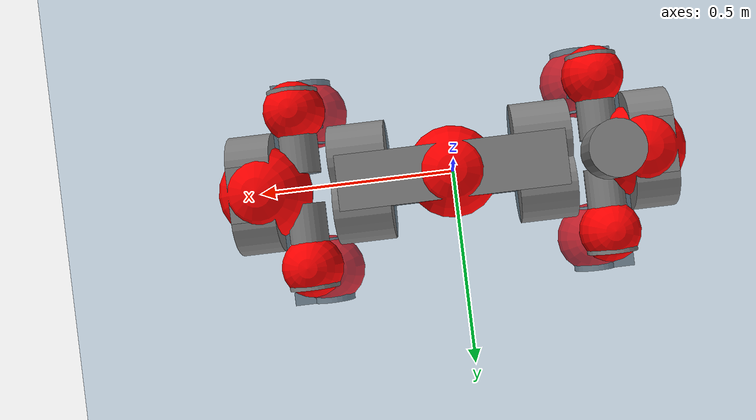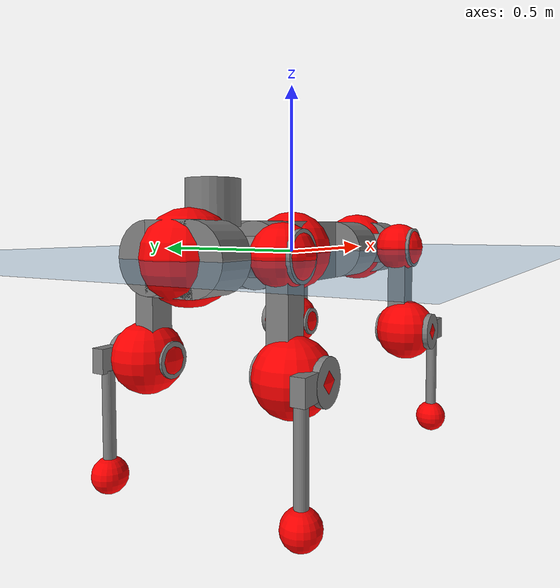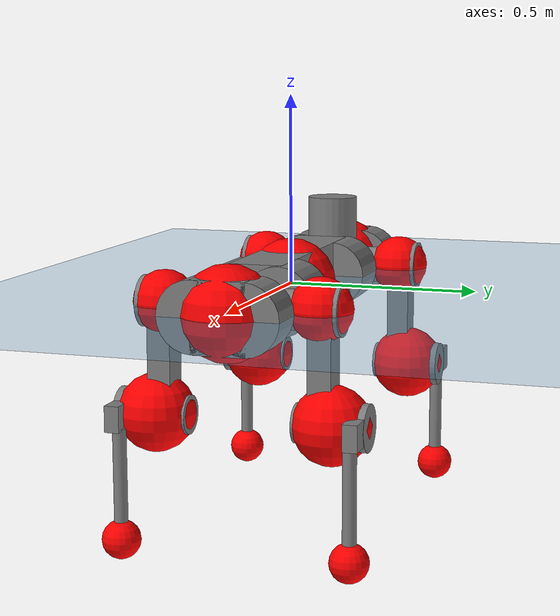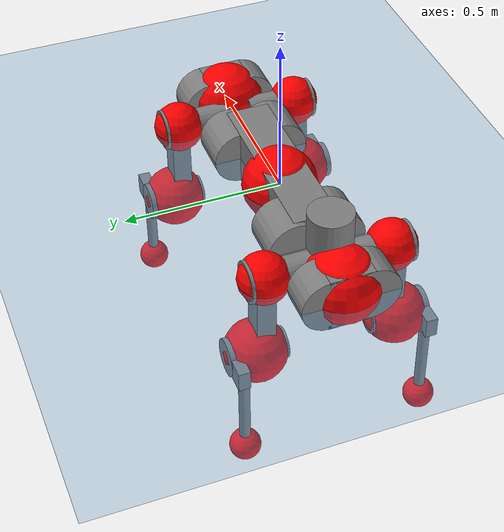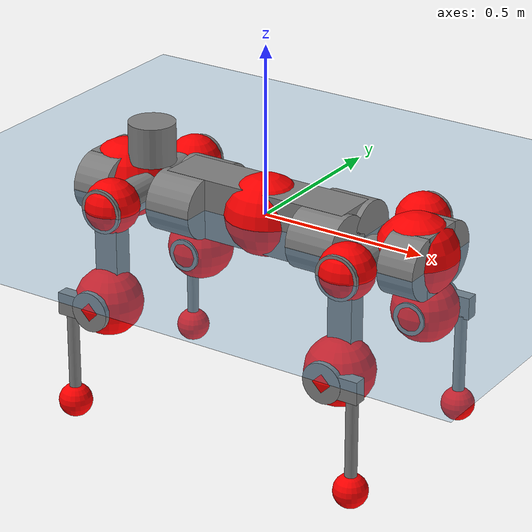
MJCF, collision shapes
<mujoco model="anymal_c">
  <compiler angle="radian" assetdir="assets" balanceinertia="true" inertiafromgeom="false"/>

  <option timestep="0.005" density="1.2" viscosity="2e-05"/>

  <size nkey="1"/>

  <visual>
    <quality shadowsize="8192"/>
    <map shadowclip="0.5"/>
  </visual>

  <default>
    <default class="/">
      <material specular="0" shininess="0.25"/>
      <geom contype="0" conaffinity="0" group="1" solref="-1000 -80"/>
      <site size="0.01 0.005 0.005" group="5"/>
      <general forcelimited="true" forcerange="-80 80" biastype="affine" gainprm="80" biasprm="0 -80 -2"/>
      <default class="anymal_c">
        <joint armature="0.01" damping="0.01" frictionloss="0.1"/>
        <default class="visual">
          <geom type="mesh" group="2"/>
          <default class="visual_zflip"/>
        </default>
        <default class="collision">
          <geom type="cylinder" group="3"/>
          <default class="foot">
            <geom size="0.03 0 0" type="sphere" condim="6" priority="1" friction="0.8 0.02 0.01" solimp="0.015 1 0.03"/>
          </default>
        </default>
      </default>
      <default class="reward_collision_sphere">
        <geom group="5" rgba="1 0 0 1"/>
      </default>
    </default>
  </default>

  <asset>
    <texture type="skybox" colorspace="auto" name="//unnamed_texture_0" builtin="gradient" rgb1="0.95 0.95 0.95" rgb2="0.95 0.95 0.95" width="100" height="600"/>
    <texture type="2d" colorspace="auto" name="texplane" builtin="checker" rgb1="0.345 0.575 0.748" rgb2="0.345 0.575 0.748" markrgb="1 1 1" width="512" height="512"/>
    <texture type="2d" colorspace="linear" name="base" file="base.png"/>
    <texture type="2d" colorspace="linear" name="top_shell" file="top_shell.png"/>
    <texture type="2d" colorspace="linear" name="bottom_shell" file="bottom_shell.png"/>
    <texture type="2d" colorspace="linear" name="remote" file="remote.png"/>
    <texture type="2d" colorspace="linear" name="hatch" file="hatch.png"/>
    <texture type="2d" colorspace="linear" name="handle" file="handle.png"/>
    <texture type="2d" colorspace="linear" name="face" file="face.png"/>
    <texture type="2d" colorspace="linear" name="battery" file="battery.png"/>
    <texture type="2d" colorspace="linear" name="lidar_cage" file="lidar_cage.png"/>
    <texture type="2d" colorspace="linear" name="depth_camera" file="depth_camera.png"/>
    <texture type="2d" colorspace="linear" name="wide_angle_camera" file="wide_angle_camera.png"/>
    <texture type="2d" colorspace="linear" name="lidar" file="lidar.png"/>
    <texture type="2d" colorspace="linear" name="drive" file="drive.png"/>
    <texture type="2d" colorspace="linear" name="hip_l" file="hip_l.png"/>
    <texture type="2d" colorspace="linear" name="shank_l" file="shank_l.png"/>
    <texture type="2d" colorspace="linear" name="foot" file="foot.png"/>
    <texture type="2d" colorspace="linear" name="thigh" file="thigh.png"/>
    <texture type="2d" colorspace="linear" name="shank_r" file="shank_r.png"/>
    <texture type="2d" colorspace="linear" name="hip_r" file="hip_r.png"/>
    <material name="MatPlane" class="/" texture="texplane" texuniform="true" texrepeat="2 2" specular="0.9" shininess="0.5"/>
    <material name="black_plastic" class="/" rgba="0.007 0.007 0.007 1"/>
    <material name="green" class="/" rgba="0.052 0.178 0.033 1"/>
    <material name="red" class="/" rgba="0.178 0.006 0.005 1"/>
    <material name="yellow" class="/" rgba="0.178 0.119 0.006 1"/>
    <material name="lwl" class="/" rgba="0.8 0.8 0.8 1"/>
    <material name="base" class="/" texture="base"/>
    <material name="top_shell" class="/" texture="top_shell"/>
    <material name="bottom_shell" class="/" texture="bottom_shell"/>
    <material name="hip_l" class="/" texture="hip_l"/>
    <material name="thigh" class="/" texture="thigh"/>
    <material name="shank_l" class="/" texture="shank_l"/>
    <material name="foot" class="/" texture="foot"/>
    <material name="hip_r" class="/" texture="hip_r"/>
    <material name="shank" class="/" texture="shank_r"/>
    <material name="hatch" class="/" texture="hatch"/>
    <material name="remote" class="/" texture="remote"/>
    <material name="handle" class="/" texture="handle"/>
    <material name="face" class="/" texture="face"/>
    <material name="depth_camera" class="/" texture="depth_camera"/>
    <material name="wide_angle_camera" class="/" texture="wide_angle_camera"/>
    <material name="battery" class="/" texture="battery"/>
    <material name="lidar_cage" class="/" texture="lidar_cage"/>
    <material name="lidar" class="/" texture="lidar"/>
    <material name="drive" class="/" texture="drive"/>
    <mesh name="base_0" class="/" file="base_0.obj"/>
    <mesh name="base_1" class="/" file="base_1.obj"/>
    <mesh name="base_2" class="/" file="base_2.obj"/>
    <mesh name="base_3" class="/" file="base_3.obj"/>
    <mesh name="base_4" class="/" file="base_4.obj"/>
    <mesh name="base_5" class="/" file="base_5.obj"/>
    <mesh name="top_shell" class="/" file="top_shell.obj"/>
    <mesh name="bottom_shell" class="/" file="bottom_shell.obj"/>
    <mesh name="remote" class="/" file="remote.obj"/>
    <mesh name="handle" class="/" file="handle.obj"/>
    <mesh name="face" class="/" file="face.obj"/>
    <mesh name="wide_angle_camera" class="/" file="wide_angle_camera.obj"/>
    <mesh name="depth_camera" class="/" file="depth_camera.obj"/>
    <mesh name="battery" class="/" file="battery.obj"/>
    <mesh name="lidar_cage" class="/" file="lidar_cage.obj"/>
    <mesh name="lidar" class="/" file="lidar.obj"/>
    <mesh name="drive" class="/" file="drive.obj"/>
    <mesh name="hip_l" class="/" file="hip_l.obj"/>
    <mesh name="thigh" class="/" file="thigh.obj"/>
    <mesh name="shank_l" class="/" file="shank_l.obj"/>
    <mesh name="foot" class="/" file="foot.obj"/>
    <mesh name="hip_r" class="/" file="hip_r.obj"/>
    <mesh name="hatch" class="/" file="hatch.obj"/>
    <mesh name="shank_r" class="/" file="shank_r.obj"/>
  </asset>

  <worldbody>
    <geom name="floor" class="/" size="100 100 0.125" type="plane" group="0" material="MatPlane"/>
    <light name="toplight_shadow" class="/" pos="0 0 5" dir="0.0990148 0.0990148 -0.990148" type="directional" ambient="0.04 0.04 0.04" diffuse="0.55 0.55 0.55" specular="0.12 0.12 0.12"/>
    <light name="toplight_fill" class="/" pos="0 0 5" dir="0.0990148 0.0990148 -0.990148" type="directional" castshadow="false" ambient="0.04 0.04 0.04" diffuse="0.3 0.3 0.3" specular="0.08 0.08 0.08"/>
    <body name="trunk" childclass="anymal_c" pos="0.0016166 1.42158e-05 0.000961187" quat="1 -7.99874e-05 0.000550428 -2.14305e-05">
      <inertial pos="0.00105802 -0.000845305 0.0491941" quat="0.499936 0.498647 0.499698 0.501714" mass="18.5841" diaginertia="0.925783 0.41147 0.211746"/>
      <joint name="//unnamed_joint_0" type="free" armature="0" damping="0" frictionloss="0"/>
      <geom name="//unnamed_geom_1" class="visual" material="green" mesh="base_0"/>
      <geom name="//unnamed_geom_2" class="visual" material="yellow" mesh="base_1"/>
      <geom name="//unnamed_geom_3" class="visual" material="red" mesh="base_2"/>
      <geom name="//unnamed_geom_4" class="visual" material="black_plastic" mesh="base_3"/>
      <geom name="//unnamed_geom_5" class="visual" material="lwl" mesh="base_4"/>
      <geom name="//unnamed_geom_6" class="visual" material="base" mesh="base_5"/>
      <geom name="trunk_1" class="collision" size="0.28925 0.0698191 0.0897674" type="box"/>
      <geom name="trunk_2" class="collision" size="0.0897674 0.0723126" pos="0.234055 0.0643945 0" quat="0.707107 0 0.707107 0"/>
      <geom name="trunk_3" class="collision" size="0.0897674 0.0723126" pos="-0.234055 0.0643945 0" quat="0.707107 0 0.707107 0"/>
      <geom name="trunk_4" class="collision" size="0.0897674 0.0723126" pos="0.234055 -0.0643945 0" quat="0.707107 0 0.707107 0"/>
      <geom name="trunk_5" class="collision" size="0.0897674 0.0723126" pos="-0.234055 -0.0643945 0" quat="0.707107 0 0.707107 0"/>
      <geom name="//unnamed_geom_12" class="visual" material="top_shell" mesh="top_shell"/>
      <geom name="//unnamed_geom_13" class="visual" material="bottom_shell" mesh="bottom_shell"/>
      <geom name="//unnamed_geom_14" class="visual" material="remote" mesh="remote"/>
      <geom name="//unnamed_geom_15" class="visual" material="handle" mesh="handle"/>
      <geom name="//unnamed_geom_16" class="visual" pos="0.44605 0 0" quat="1 0 0 0" material="face" mesh="face"/>
      <geom name="trunk_6" class="collision" size="0.0548578 0.0698191 0.0897674" pos="0.505236 0 0" type="box"/>
      <geom name="//unnamed_geom_18" class="collision" size="0.0897674 0.0548578" pos="0.505236 0.0643945 0" quat="0.707107 0 0.707107 0"/>
      <geom name="//unnamed_geom_19" class="collision" size="0.0897674 0.0548578" pos="0.505236 -0.0643945 0" quat="0.707107 0 0.707107 0"/>
      <geom name="//unnamed_geom_20" class="visual" pos="0.496785 0 -0.028482" quat="0.965926 0 0.258819 0" material="depth_camera" mesh="depth_camera"/>
      <geom name="//unnamed_geom_21" class="visual" pos="0.552047 0 0.0149133" material="wide_angle_camera" mesh="wide_angle_camera"/>
      <geom name="//unnamed_geom_22" class="visual_zflip" pos="-0.44605 0 0" quat="0 0 0 1" material="face" mesh="face"/>
      <geom name="trunk_7" class="collision" size="0.0548578 0.0698191 0.0897674" pos="-0.505236 0 0" quat="0 0 0 1" type="box"/>
      <geom name="//unnamed_geom_24" class="collision" size="0.0897674 0.0548578" pos="-0.505236 -0.0643945 0" quat="0 -0.707107 0 0.707107"/>
      <geom name="//unnamed_geom_25" class="collision" size="0.0897674 0.0548578" pos="-0.505236 0.0643945 0" quat="0 -0.707107 0 0.707107"/>
      <geom name="//unnamed_geom_26" class="visual" pos="-0.496785 0 -0.028482" quat="0 -0.258819 0 0.965926" material="depth_camera" mesh="depth_camera"/>
      <geom name="//unnamed_geom_27" class="visual_zflip" pos="-0.552047 0 0.0149133" quat="0 0 0 1" material="wide_angle_camera" mesh="wide_angle_camera"/>
      <geom name="//unnamed_geom_28" class="visual" material="battery" mesh="battery"/>
      <geom name="//unnamed_geom_29" class="visual" pos="0 0.0682843 0.0295472" quat="0.683013 -0.183013 0.183013 0.683013" material="depth_camera" mesh="depth_camera"/>
      <geom name="//unnamed_geom_30" class="visual" pos="0 -0.0682843 0.0295472" quat="0.683013 0.183013 0.183013 -0.683013" material="depth_camera" mesh="depth_camera"/>
      <geom name="//unnamed_geom_31" class="visual" pos="-0.391706 0 0.0732214" quat="1 0 0 0" material="lidar_cage" mesh="lidar_cage"/>
      <geom name="trunk_8" class="collision" size="0.0698191 0.0598449" pos="-0.391706 0 0.132994"/>
      <geom name="//unnamed_geom_33" class="visual" pos="-0.391706 -6.13642e-05 0.141661" quat="0.707107 0 0 -0.707107" material="lidar" mesh="lidar"/>
      <geom name="//unnamed_geom_34" class="visual" pos="0.322727 0.0956989 -1.31598e-09" quat="0.258819 0.965926 0 0" material="drive" mesh="drive"/>
      <geom name="//unnamed_geom_35" class="visual" pos="0.322727 -0.0956989 1.31598e-09" quat="0.258819 -0.965926 0 0" material="drive" mesh="drive"/>
      <geom name="//unnamed_geom_36" class="visual" pos="-0.322727 0.0956989 1.31598e-09" quat="0 0 0.965926 -0.258819" material="drive" mesh="drive"/>
      <geom name="//unnamed_geom_37" class="visual" pos="-0.322727 -0.0956989 -1.31598e-09" quat="0 0 -0.965926 -0.258819" material="drive" mesh="drive"/>
      <geom name="//unnamed_geom_38" class="visual" pos="0.124829 0 0.0727233" quat="1 0 0 0" material="hatch" mesh="hatch"/>
      <geom name="//unnamed_geom_39" class="reward_collision_sphere" size="0.11969"/>
      <geom name="//unnamed_geom_40" class="reward_collision_sphere" size="0.11969" pos="0.484252 0 0"/>
      <geom name="//unnamed_geom_41" class="reward_collision_sphere" size="0.11969" pos="-0.484252 0 0"/>
      <site name="imu" pos="0.267065 0.00334917 0.0507953" size="0.00997415"/>
      <camera name="track" pos="0 -1.83984 0" quat="0.707107 0.707107 0 0" mode="trackcom"/>
      <camera name="ego_camera" pos="0.484252 0 -0.0398484" quat="-0.5 -0.5 0.5 0.5"/>
      <body name="LF_HIP" pos="0.323137 0.0955812 0.000115013" quat="0.258924 0.965898 -4.41741e-06 0.000471213">
        <inertial pos="0.0610936 -0.0135934 -0.00870407" quat="-0.127344 0.71013 -0.136605 0.678851" mass="2.79923" diaginertia="0.00864745 0.00321096 0.00322398"/>
        <joint name="LF_HAA" pos="0 0 0" axis="0.999945 -0.000888814 0.0104114" range="-0.68999 0.480046" armature="0.0099189" damping="0.00537281" frictionloss="0.0989848"/>
        <geom name="//unnamed_geom_42" class="visual" pos="0 -7.74131e-05 1.2715e-05" quat="0.258819 -0.965926 0 0" material="hip_l" mesh="hip_l"/>
        <geom name="//unnamed_geom_43" class="visual" pos="0.0644593 -0.0760767 -0.0444872" quat="0.183013 -0.683013 0.683013 0.183013" material="drive" mesh="drive"/>
        <geom name="//unnamed_geom_44" class="collision" size="0.0498708 0.0698191" pos="0.0644593 -0.0110021 -0.00687883" quat="-0.353553 -0.612372 0.612372 -0.353553"/>
        <body name="LF_THIGH" pos="0.0638048 -0.0669369 -0.0431428" quat="0.183257 -0.683015 0.682966 0.182933">
          <inertial pos="0.033205 0.000684355 -0.245769" quat="0.993169 -0.00520323 -0.0806315 0.084183" mass="3.0552" diaginertia="0.0431978 0.0197294 0.00420136"/>
          <joint name="LF_HFE" pos="0 0 0" axis="0.999997 -0.00148642 0.00202143" range="-3.1605 3.14148" armature="0.0103037" damping="0.00905731" frictionloss="0.103217"/>
          <geom name="//unnamed_geom_45" class="visual" pos="0.00310764 4.89691e-06 0" quat="0.707107 0 0 -0.707107" material="thigh" mesh="thigh"/>
          <geom name="//unnamed_geom_46" class="collision" size="0.064832 0.0398966" pos="0.0430446 0 0" quat="0.5 0.5 -0.5 -0.5"/>
          <geom name="//unnamed_geom_47" class="collision" size="0.0374031 0.0299225 0.140949" pos="0.0322834 0 -0.140778" quat="0.707107 0 0 -0.707107" type="box"/>
          <geom name="//unnamed_geom_48" class="visual" pos="0.107934 0 -0.28392" quat="1 0 0 0" material="drive" mesh="drive"/>
          <geom name="//unnamed_geom_49" class="collision" size="0.0498708 0.0698191" pos="0.0326063 0 -0.28392" quat="0.707107 0 0.707107 0"/>
          <geom name="//unnamed_geom_50" class="reward_collision_sphere" size="0.0797932" pos="0.0269029 0 0"/>
          <body name="LF_SHANK" pos="0.108218 -0.00136302 -0.283689" quat="1 0.000187969 -0.000150514 -8.75173e-05">
            <inertial pos="0.00550708 -0.05655 -0.0808024" quat="0.99259 -0.118653 0.00214656 -0.0260984" mass="0.584056" diaginertia="0.0151213 0.00617344 0.00111592"/>
            <joint name="LF_KFE" pos="0 0 0" axis="0.999987 -0.00265342 0.00439848" range="-3.16113 3.13536" armature="0.00956396" damping="0.00501543" frictionloss="0.095193"/>
            <geom name="//unnamed_geom_51" class="visual" pos="0.00101333 0.00540314 0" quat="0.707107 0 0 -0.707107" material="shank_l" mesh="shank_l"/>
            <geom name="LF_kfe_act" class="collision" size="0.0598449 0.0199483" pos="0.0215223 0 0" quat="0.5 0.5 -0.5 -0.5"/>
            <geom name="//unnamed_geom_53" class="collision" size="0.0573504 0.0336628 0.0189509" pos="0.0215223 -0.0528946 0" quat="0.5 0.5 -0.5 -0.5" type="box"/>
            <geom name="//unnamed_geom_54" class="visual" pos="0.0140431 -0.0791659 -0.336689" quat="0.382683 0 0 -0.92388" material="foot" mesh="foot"/>
            <geom name="LF_calf" class="collision" size="0.0174548 0.140887" pos="0.0140433 -0.0809071 -0.168344" quat="0.707107 0 0 -0.707107"/>
            <geom name="LF_foot" class="foot" size="0.0322501" pos="0.0140433 -0.0809071 -0.314274" quat="0.707107 0 0 -0.707107"/>
            <geom name="//unnamed_geom_57" class="reward_collision_sphere" size="0.0997415" pos="-0.0538057 0 0"/>
            <geom name="//unnamed_geom_58" class="reward_collision_sphere" size="0.0498708" pos="0.0140433 -0.0809071 -0.314274"/>
            <site name="LF_foot" class="foot" pos="0.0140433 -0.0809071 -0.314274" quat="0.707107 0 0 -0.707107" size="0.00997415"/>
          </body>
        </body>
      </body>
      <body name="RF_HIP" pos="0.323677 -0.0962376 -0.000822621" quat="0.258924 -0.965898 6.51932e-05 4.42975e-05">
        <inertial pos="0.0601898 0.0138085 -0.00824878" quat="0.133876 0.680147 0.126601 0.709542" mass="2.75394" diaginertia="0.00854488 0.00327231 0.00328349"/>
        <joint name="RF_HAA" pos="0 0 0" axis="0.999982 -0.00602187 0.000493504" stiffness="7.27584e-05" range="-0.505246 0.723981" armature="0.00979832" damping="0.0104925" frictionloss="0.0970135"/>
        <geom name="//unnamed_geom_59" class="visual" pos="0 7.74125e-05 1.2715e-05" quat="0.258819 0.965926 0 0" material="hip_r" mesh="hip_r"/>
        <geom name="//unnamed_geom_60" class="visual" pos="0.0644593 0.0760767 -0.0444872" quat="0.183013 0.683013 0.683013 -0.183013" material="drive" mesh="drive"/>
        <geom name="//unnamed_geom_61" class="collision" size="0.0498708 0.0698191" pos="0.0644593 0.0110021 -0.00687883" quat="-0.353553 0.612372 0.612372 0.353553"/>
        <body name="RF_THIGH" pos="0.0647012 0.0650621 -0.0428484" quat="0.182986 0.682994 0.683041 -0.183005">
          <inertial pos="0.0323988 -0.000121648 -0.244804" quat="0.992909 -0.0052196 -0.0816086 0.0862818" mass="3.05844" diaginertia="0.0440491 0.0200712 0.00417755"/>
          <joint name="RF_HFE" pos="0 0 0" axis="1 0.000224097 0.000172585" range="-3.15264 3.14556" armature="0.00994312" damping="0.00909193" frictionloss="0.0950029"/>
          <geom name="//unnamed_geom_62" class="visual" pos="0.00310764 4.89691e-06 0" quat="0.707107 0 0 -0.707107" material="thigh" mesh="thigh"/>
          <geom name="//unnamed_geom_63" class="collision" size="0.064832 0.0398966" pos="0.0430446 0 0" quat="0.5 0.5 0.5 0.5"/>
          <geom name="//unnamed_geom_64" class="collision" size="0.0374031 0.0299225 0.140949" pos="0.0322834 0 -0.140778" quat="0.707107 0 0 0.707107" type="box"/>
          <geom name="//unnamed_geom_65" class="visual" pos="0.107934 0 -0.28392" quat="1 0 0 0" material="drive" mesh="drive"/>
          <geom name="//unnamed_geom_66" class="collision" size="0.0498708 0.0698191" pos="0.0326063 0 -0.28392" quat="0.707107 0 0.707107 0"/>
          <geom name="//unnamed_geom_67" class="reward_collision_sphere" size="0.0797932" pos="0.0269029 0 0"/>
          <body name="RF_SHANK" pos="0.107699 -2.98897e-05 -0.282992" quat="1 -1.80665e-05 -2.27931e-05 1.61571e-05">
            <inertial pos="0.00587401 0.0562669 -0.0801791" quat="0.993055 0.113955 -0.00058649 0.0292564" mass="0.585903" diaginertia="0.0146521 0.00608337 0.00110056"/>
            <joint name="RF_KFE" pos="0 0 0" axis="0.999996 0.000541429 0.00292494" range="-3.1276 3.13073" armature="0.0102983" damping="0.00830749" frictionloss="0.104156"/>
            <geom name="//unnamed_geom_68" class="visual" pos="0.00101333 -0.00540313 0" quat="0.707107 0 0 0.707107" material="shank" mesh="shank_r"/>
            <geom name="RF_kfe_act" class="collision" size="0.0598449 0.0199483" pos="0.0215223 0 0" quat="0.5 0.5 0.5 0.5"/>
            <geom name="//unnamed_geom_70" class="collision" size="0.0573504 0.0336628 0.0189509" pos="0.0215223 0.0528946 0" quat="0.5 0.5 0.5 0.5" type="box"/>
            <geom name="//unnamed_geom_71" class="visual" pos="0.0140435 0.0791659 -0.336689" quat="0.382683 0 0 0.92388" material="foot" mesh="foot"/>
            <geom name="RF_calf" class="collision" size="0.0174548 0.140887" pos="0.0140433 0.0809071 -0.168344" quat="0.707107 0 0 0.707107"/>
            <geom name="RF_foot" class="foot" size="0.0295372" pos="0.0140433 0.0809071 -0.314274" quat="0.707107 0 0 0.707107"/>
            <geom name="//unnamed_geom_74" class="reward_collision_sphere" size="0.0997415" pos="-0.0538057 0 0"/>
            <geom name="//unnamed_geom_75" class="reward_collision_sphere" size="0.0498708" pos="0.0140433 0.0809071 -0.314274"/>
            <site name="RF_foot" class="foot" pos="0.0140433 0.0809071 -0.314274" quat="0.707107 0 0 0.707107" size="0.00997415"/>
          </body>
        </body>
      </body>
      <body name="LH_HIP" pos="-0.322517 0.0959516 0.000818324" quat="-0.000200454 2.57679e-05 0.965969 -0.258658">
        <inertial pos="0.0602816 0.015101 -0.00824266" quat="0.130247 0.675522 0.124469 0.714992" mass="2.80911" diaginertia="0.00850238 0.00326196 0.00327789"/>
        <joint name="LH_HAA" pos="0 0 0" axis="0.999999 -0.000960038 0.000575186" range="-0.504279 0.737432" armature="0.00979911" damping="0.0119473" frictionloss="0.104028"/>
        <geom name="//unnamed_geom_76" class="visual" pos="0 7.74125e-05 1.2715e-05" quat="-0.258819 -0.965926 0 0" material="hip_r" mesh="hip_r"/>
        <geom name="//unnamed_geom_77" class="visual" pos="0.0644593 0.0760767 -0.0444872" quat="0.183013 0.683013 0.683013 -0.183013" material="drive" mesh="drive"/>
        <geom name="//unnamed_geom_78" class="collision" size="0.0498708 0.0698191" pos="0.0644593 0.0110021 -0.00687883" quat="-0.353553 0.612372 0.612372 0.353553"/>
        <body name="LH_THIGH" pos="0.0641011 0.0660419 -0.041714" quat="0.18275 0.683235 0.682896 -0.182882">
          <inertial pos="0.0333035 2.02568e-05 -0.244134" quat="0.992477 -0.0037864 -0.0806335 0.092046" mass="3.0888" diaginertia="0.0433759 0.0197593 0.00406887"/>
          <joint name="LH_HFE" pos="0 0 0" axis="0.99999 0.000263035 -0.00442621" range="-3.14621 3.14065" armature="0.00993923" damping="0.0129368" frictionloss="0.0994061"/>
          <geom name="//unnamed_geom_79" class="visual" pos="0.00310764 4.89691e-06 0" quat="0.707107 0 0 -0.707107" material="thigh" mesh="thigh"/>
          <geom name="//unnamed_geom_80" class="collision" size="0.064832 0.0398966" pos="0.0430446 0 0" quat="0.5 0.5 -0.5 -0.5"/>
          <geom name="//unnamed_geom_81" class="collision" size="0.0374031 0.0299225 0.140949" pos="0.0322834 0 -0.140778" quat="0.707107 0 0 -0.707107" type="box"/>
          <geom name="//unnamed_geom_82" class="visual" pos="0.107934 0 -0.28392" quat="1 0 0 0" material="drive" mesh="drive"/>
          <geom name="//unnamed_geom_83" class="collision" size="0.0498708 0.0698191" pos="0.0326063 0 -0.28392" quat="0.707107 0 0.707107 0"/>
          <geom name="//unnamed_geom_84" class="reward_collision_sphere" size="0.0797932" pos="0.0269029 0 0"/>
          <body name="LH_SHANK" pos="0.107971 -0.000156863 -0.284988" quat="1 1.9235e-05 8.6067e-05 -5.80227e-05">
            <inertial pos="0.00659742 0.0577174 -0.0803273" quat="0.99303 0.114599 -0.00506209 0.027058" mass="0.579433" diaginertia="0.0147101 0.00602538 0.00106884"/>
            <joint name="LH_KFE" pos="0 0 0" axis="0.999996 0.00264028 0.00048381" range="-3.14094 3.12201" armature="0.00958661" damping="0.0109614" frictionloss="0.106631"/>
            <geom name="//unnamed_geom_85" class="visual" pos="0.00101333 -0.00540313 0" quat="-0.707107 0 0 -0.707107" material="shank" mesh="shank_r"/>
            <geom name="LH_kfe_act" class="collision" size="0.0598449 0.0199483" pos="0.0215223 0 0" quat="0.5 0.5 -0.5 -0.5"/>
            <geom name="//unnamed_geom_87" class="collision" size="0.0573504 0.0336628 0.0189509" pos="0.0215223 0.0528946 0" quat="0.5 0.5 -0.5 -0.5" type="box"/>
            <geom name="//unnamed_geom_88" class="visual" pos="0.0140435 0.0791659 -0.336689" quat="-0.382683 0 0 -0.92388" material="foot" mesh="foot"/>
            <geom name="LH_calf" class="collision" size="0.0174548 0.140887" pos="0.0140433 0.0809071 -0.168344" quat="0.707107 0 0 -0.707107"/>
            <geom name="LH_foot" class="foot" size="0.0311488" pos="0.0140433 0.0809071 -0.314274" quat="0.707107 0 0 -0.707107"/>
            <geom name="//unnamed_geom_91" class="reward_collision_sphere" size="0.0997415" pos="-0.0538057 0 0"/>
            <geom name="//unnamed_geom_92" class="reward_collision_sphere" size="0.0498708" pos="0.0140433 0.0809071 -0.314274"/>
            <site name="LH_foot" class="foot" pos="0.0140433 0.0809071 -0.314274" quat="0.707107 0 0 -0.707107" size="0.00997415"/>
          </body>
        </body>
      </body>
      <body name="RH_HIP" pos="-0.323153 -0.0950998 -3.43453e-05" quat="8.64195e-05 -0.000409952 -0.966088 -0.258212">
        <inertial pos="0.0623915 -0.0142804 -0.00988973" quat="-0.128499 0.710125 -0.133883 0.679181" mass="2.75447" diaginertia="0.00844844 0.0032475 0.0032152"/>
        <joint name="RH_HAA" pos="0 0 0" axis="0.999959 0.00869406 -0.00257594" range="-0.736547 0.501996" armature="0.0104517" damping="0.00830709" frictionloss="0.101756"/>
        <geom name="//unnamed_geom_93" class="visual" pos="0 -7.74131e-05 1.2715e-05" quat="-0.258819 0.965926 0 0" material="hip_l" mesh="hip_l"/>
        <geom name="//unnamed_geom_94" class="visual" pos="0.0644593 -0.0760767 -0.0444872" quat="-0.183013 0.683013 -0.683013 -0.183013" material="drive" mesh="drive"/>
        <geom name="//unnamed_geom_95" class="collision" size="0.0498708 0.0698191" pos="0.0644593 -0.0110021 -0.00687883" quat="0.353553 0.612372 -0.612372 0.353553"/>
        <body name="RH_THIGH" pos="0.0643092 -0.0661135 -0.0432814" quat="-0.183061 0.683066 -0.682927 -0.183086">
          <inertial pos="0.0329077 0.000137585 -0.244539" quat="0.993171 -0.00497392 -0.0802248 0.0845639" mass="3.02598" diaginertia="0.0434137 0.0195808 0.00410809"/>
          <joint name="RH_HFE" pos="0 0 0" axis="1 0.000313543 -0.000119106" range="-3.13809 3.15801" armature="0.00980271" damping="0.00789457" frictionloss="0.101659"/>
          <geom name="//unnamed_geom_96" class="visual" pos="0.00310764 4.89691e-06 0" quat="0.707107 0 0 -0.707107" material="thigh" mesh="thigh"/>
          <geom name="//unnamed_geom_97" class="collision" size="0.064832 0.0398966" pos="0.0430446 0 0" quat="0.5 0.5 0.5 0.5"/>
          <geom name="//unnamed_geom_98" class="collision" size="0.0374031 0.0299225 0.140949" pos="0.0322834 0 -0.140778" quat="0.707107 0 0 0.707107" type="box"/>
          <geom name="//unnamed_geom_99" class="visual" pos="0.107934 0 -0.28392" quat="1 0 0 0" material="drive" mesh="drive"/>
          <geom name="//unnamed_geom_100" class="collision" size="0.0498708 0.0698191" pos="0.0326063 0 -0.28392" quat="0.707107 0 0.707107 0"/>
          <geom name="//unnamed_geom_101" class="reward_collision_sphere" size="0.0797932" pos="0.0269029 0 0"/>
          <body name="RH_SHANK" pos="0.107135 0.000352274 -0.285242" quat="1 -9.58435e-05 0.000156331 0.000100143">
            <inertial pos="0.00612687 -0.0557115 -0.0801124" quat="0.993076 -0.113784 -0.00193513 -0.0291492" mass="0.584832" diaginertia="0.0145439 0.00607725 0.00110504"/>
            <joint name="RH_KFE" pos="0 0 0" axis="0.999959 0.0070291 0.00569108" range="-3.12763 3.13281" armature="0.010078" damping="0.0120802" frictionloss="0.100704"/>
            <geom name="//unnamed_geom_102" class="visual" pos="0.00101333 0.00540314 0" quat="0.707107 0 0 -0.707107" material="shank_l" mesh="shank_l"/>
            <geom name="RH_kfe_act" class="collision" size="0.0598449 0.0199483" pos="0.0215223 0 0" quat="0.5 0.5 0.5 0.5"/>
            <geom name="//unnamed_geom_104" class="collision" size="0.0573504 0.0336628 0.0189509" pos="0.0215223 -0.0528946 0" quat="0.5 0.5 0.5 0.5" type="box"/>
            <geom name="//unnamed_geom_105" class="visual" pos="0.0140431 -0.0791659 -0.336689" quat="0.382683 0 0 -0.92388" material="foot" mesh="foot"/>
            <geom name="RH_calf" class="collision" size="0.0174548 0.140887" pos="0.0140433 -0.0809071 -0.168344" quat="0.707107 0 0 0.707107"/>
            <geom name="RH_foot" class="foot" size="0.0272814" pos="0.0140433 -0.0809071 -0.314274" quat="0.707107 0 0 0.707107"/>
            <geom name="//unnamed_geom_108" class="reward_collision_sphere" size="0.0997415" pos="-0.0538057 0 0"/>
            <geom name="//unnamed_geom_109" class="reward_collision_sphere" size="0.0498708" pos="0.0140433 -0.0809071 -0.314274"/>
            <site name="RH_foot" class="foot" pos="0.0140433 -0.0809071 -0.314274" quat="0.707107 0 0 0.707107" size="0.00997415"/>
          </body>
        </body>
      </body>
    </body>
  </worldbody>

  <contact>
    <pair class="/" geom1="floor" geom2="LF_foot" name="//unnamed_contact_0"/>
    <pair class="/" geom1="floor" geom2="RF_foot" name="//unnamed_contact_1"/>
    <pair class="/" geom1="floor" geom2="LH_foot" name="//unnamed_contact_2"/>
    <pair class="/" geom1="floor" geom2="RH_foot" name="//unnamed_contact_3"/>
  </contact>

  <actuator>
    <general name="LF_HAA" class="/" joint="LF_HAA" forcerange="-80.7136 80.7136" gainprm="78.9415" biasprm="0 -78.9415 -1.91769"/>
    <general name="LF_HFE" class="/" joint="LF_HFE" forcerange="-82.6183 82.6183" gainprm="78.9415" biasprm="0 -78.9415 -1.91769"/>
    <general name="LF_KFE" class="/" joint="LF_KFE" forcerange="-79.5805 79.5805" gainprm="78.9415" biasprm="0 -78.9415 -1.91769"/>
    <general name="RF_HAA" class="/" joint="RF_HAA" forcerange="-80.7004 80.7004" gainprm="78.9415" biasprm="0 -78.9415 -1.91769"/>
    <general name="RF_HFE" class="/" joint="RF_HFE" forcerange="-78.5342 78.5342" gainprm="78.9415" biasprm="0 -78.9415 -1.91769"/>
    <general name="RF_KFE" class="/" joint="RF_KFE" forcerange="-79.9161 79.9161" gainprm="78.9415" biasprm="0 -78.9415 -1.91769"/>
    <general name="LH_HAA" class="/" joint="LH_HAA" forcerange="-84.5141 84.5141" gainprm="78.9415" biasprm="0 -78.9415 -1.91769"/>
    <general name="LH_HFE" class="/" joint="LH_HFE" forcerange="-82.9684 82.9684" gainprm="78.9415" biasprm="0 -78.9415 -1.91769"/>
    <general name="LH_KFE" class="/" joint="LH_KFE" forcerange="-77.4418 77.4418" gainprm="78.9415" biasprm="0 -78.9415 -1.91769"/>
    <general name="RH_HAA" class="/" joint="RH_HAA" forcerange="-81.8855 81.8855" gainprm="78.9415" biasprm="0 -78.9415 -1.91769"/>
    <general name="RH_HFE" class="/" joint="RH_HFE" forcerange="-83.8273 83.8273" gainprm="78.9415" biasprm="0 -78.9415 -1.91769"/>
    <general name="RH_KFE" class="/" joint="RH_KFE" forcerange="-81.4216 81.4216" gainprm="78.9415" biasprm="0 -78.9415 -1.91769"/>
  </actuator>

  <sensor>
    <gyro site="imu" name="imu_angular_velocity"/>
    <velocimeter site="imu" name="imu_linear_velocity"/>
    <framelinvel objtype="site" objname="LF_foot" name="LF_foot_global_linear_velocity"/>
    <framelinvel objtype="site" objname="RF_foot" name="RF_foot_global_linear_velocity"/>
    <framelinvel objtype="site" objname="LH_foot" name="LH_foot_global_linear_velocity"/>
    <framelinvel objtype="site" objname="RH_foot" name="RH_foot_global_linear_velocity"/>
  </sensor>

  <keyframe>
    <key name="home" qpos="0 0 0.55 1 0 0 0 0 0.4 -0.8 0 -0.4 0.8 0 -0.4 0.8 0 0.4 -0.8"/>
  </keyframe>
</mujoco>
